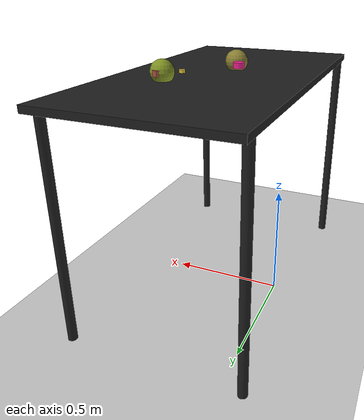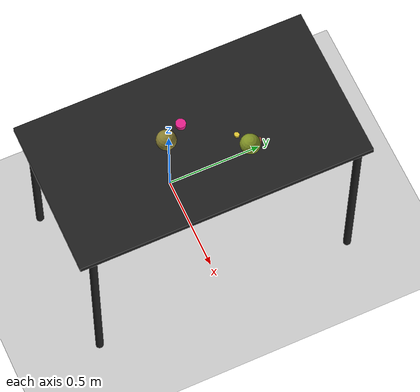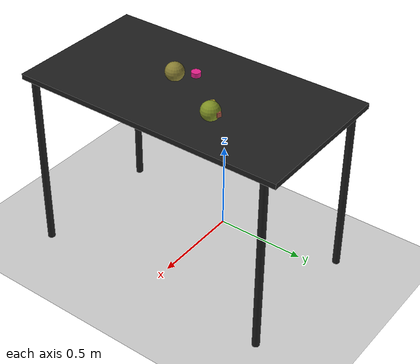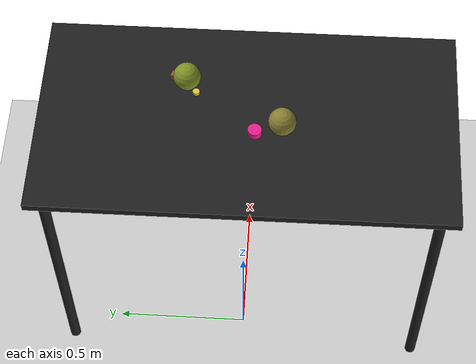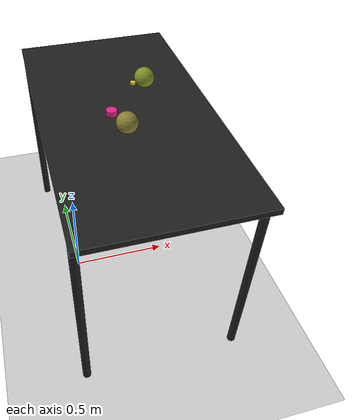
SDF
<?xml version="1.0" ?>
<sdf version="1.6">
  <world name="arm_world">
    <plugin filename="gz-sim-physics-system" name="gz::sim::systems::Physics">
      <engine>
        <filename>libgz-physics-bullet-featherstone-plugin.so</filename>
      </engine>
    </plugin>
    <plugin filename="gz-sim-user-commands-system" name="gz::sim::systems::UserCommands"/>
    <plugin filename="gz-sim-scene-broadcaster-system" name="gz::sim::systems::SceneBroadcaster"/>
    <plugin filename="gz-sim-sensors-system" name="gz::sim::systems::Sensors">
      <render_engine>ogre2</render_engine>
    </plugin>
    <gravity>0.0 0.0 -9.8</gravity>
    <scene>
      <shadows>false</shadows>
    </scene>
    <gui>
      <camera name="user_camera">
        <pose>0.75 -0.75 1.4 0 0.29 2.21</pose>
      </camera>
    </gui>
    <include>
      <uri>https://fuel.gazebosim.org/1.0/OpenRobotics/models/Sun</uri>
    </include>
    <model name="table">
      <static>true</static>
      <include>
        <uri>model://table</uri>
      </include>
      <pose>0.29 0 0 0 0 1.5708</pose>
    </model>
    <model name="ground_plane">
      <static>true</static>
      <link name="link">
        <collision name="collision">
          <geometry>
            <plane>
              <normal>0 0 1</normal>
            </plane>
          </geometry>
          <surface>
            <friction>
              <ode>
                <mu>1.0</mu>
                <mu2>1.0</mu2>
              </ode>
            </friction>
          </surface>
        </collision>
        <visual name="visual">
          <geometry>
            <plane>
              <normal>0 0 1</normal>
              <size>100 100</size>
            </plane>
          </geometry>
          <material>
            <ambient>0.8 0.8 0.8 1</ambient>
            <diffuse>0.8 0.8 0.8 1</diffuse>
            <specular>0.8 0.8 0.8 1</specular>
          </material>
        </visual>
      </link>
    </model>
    <model name="cube_s_0">
      <pose>0.442 0.268 1.05 0 0 5.89</pose>
      <link name="cube_s_0_link">
        <collision name="cube_s_0_collision">
          <geometry>
            <box>
              <size>0.025 0.025 0.025</size>
            </box>
          </geometry>
        </collision>
        <visual name="cube_s_0_visual">
          <geometry>
            <box>
              <size>0.025 0.025 0.025</size>
            </box>
          </geometry>
          <material>
            <ambient>0.64 0.32 0.24 1</ambient>
            <diffuse>0.64 0.32 0.24 1</diffuse>
          </material>
        </visual>
        <velocity_decay>
          <linear>1</linear>
          <angular>1</angular>
        </velocity_decay>
      </link>
    </model>
    <model name="sphere_l_1">
      <pose>0.442 0.225 1.05 0 0 3.48</pose>
      <link name="sphere_l_1_link">
        <collision name="sphere_l_1_collision">
          <geometry>
            <sphere>
              <radius>0.05</radius>
            </sphere>
          </geometry>
        </collision>
        <visual name="sphere_l_1_visual">
          <geometry>
            <sphere>
              <radius>0.05</radius>
            </sphere>
          </geometry>
          <material>
            <ambient>0.5 0.57 0.14 1</ambient>
            <diffuse>0.5 0.57 0.14 1</diffuse>
          </material>
        </visual>
        <velocity_decay>
          <linear>1</linear>
          <angular>1</angular>
        </velocity_decay>
      </link>
    </model>
    <model name="cylinder_s_2">
      <pose>0.373 0.187 1.05 0 0 5.41</pose>
      <link name="cylinder_s_2_link">
        <collision name="cylinder_s_2_collision">
          <geometry>
            <cylinder>
              <radius>0.0125</radius>
              <length>0.0125</length>
            </cylinder>
          </geometry>
        </collision>
        <visual name="cylinder_s_2_visual">
          <geometry>
            <cylinder>
              <radius>0.0125</radius>
              <length>0.0125</length>
            </cylinder>
          </geometry>
          <material>
            <ambient>0.88 0.78 0.2 1</ambient>
            <diffuse>0.88 0.78 0.2 1</diffuse>
          </material>
        </visual>
        <velocity_decay>
          <linear>1</linear>
          <angular>1</angular>
        </velocity_decay>
      </link>
    </model>
    <model name="sphere_l_3">
      <pose>0.261 -0.125 1.05 0 0 1.51</pose>
      <link name="sphere_l_3_link">
        <collision name="sphere_l_3_collision">
          <geometry>
            <sphere>
              <radius>0.05</radius>
            </sphere>
          </geometry>
        </collision>
        <visual name="sphere_l_3_visual">
          <geometry>
            <sphere>
              <radius>0.05</radius>
            </sphere>
          </geometry>
          <material>
            <ambient>0.54 0.5 0.2 1</ambient>
            <diffuse>0.54 0.5 0.2 1</diffuse>
          </material>
        </visual>
        <velocity_decay>
          <linear>1</linear>
          <angular>1</angular>
        </velocity_decay>
      </link>
    </model>
    <model name="cylinder_m_4">
      <pose>0.214 -0.03 1.05 0 0 4.17</pose>
      <link name="cylinder_m_4_link">
        <collision name="cylinder_m_4_collision">
          <geometry>
            <cylinder>
              <radius>0.025</radius>
              <length>0.025</length>
            </cylinder>
          </geometry>
        </collision>
        <visual name="cylinder_m_4_visual">
          <geometry>
            <cylinder>
              <radius>0.025</radius>
              <length>0.025</length>
            </cylinder>
          </geometry>
          <material>
            <ambient>0.91 0.12 0.55 1</ambient>
            <diffuse>0.91 0.12 0.55 1</diffuse>
          </material>
        </visual>
        <velocity_decay>
          <linear>1</linear>
          <angular>1</angular>
        </velocity_decay>
      </link>
    </model>
  </world>
</sdf>

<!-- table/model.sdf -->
<sdf version="1.5">
  <model name="table">
    <static>true</static>
    <link name="link">
      <collision name="surface">
        <pose>0 0 1.0 0 0 0</pose>
        <geometry>
          <box>
            <size>1.5 0.8 0.03</size>
          </box>
        </geometry>
        <surface>
          <friction>
            <ode>
              <mu>0.6</mu>
              <mu2>0.6</mu2>
            </ode>
          </friction>
        </surface>
      </collision>
      <visual name="surface">
        <pose>0 0 1.0 0 0 0</pose>
        <geometry>
          <box>
            <size>1.5 0.8 0.03</size>
          </box>
        </geometry>
        <material>
          <script>
            <uri>file://media/materials/scripts/gazebo.material</uri>
            <name>Gazebo/Black</name>
          </script>
        </material>
      </visual>
      <collision name="front_left_leg">
        <pose>0.68 0.38 0.5 0 0 0</pose>
        <geometry>
          <cylinder>
            <radius>0.02</radius>
            <length>1.0</length>
          </cylinder>
        </geometry>
      </collision>
      <visual name="front_left_leg">
        <pose>0.68 0.38 0.5 0 0 0</pose>
        <geometry>
          <cylinder>
            <radius>0.02</radius>
            <length>1.0</length>
          </cylinder>
        </geometry>
        <material>
          <script>
            <uri>file://media/materials/scripts/gazebo.material</uri>
            <name>Gazebo/Black</name>
          </script>
        </material>
      </visual>
      <collision name="front_right_leg">
        <pose>0.68 -0.38 0.5 0 0 0</pose>
        <geometry>
          <cylinder>
            <radius>0.02</radius>
            <length>1.0</length>
          </cylinder>
        </geometry>
      </collision>
      <visual name="front_right_leg">
        <pose>0.68 -0.38 0.5 0 0 0</pose>
        <geometry>
          <cylinder>
            <radius>0.02</radius>
            <length>1.0</length>
          </cylinder>
        </geometry>
        <material>
          <script>
            <uri>file://media/materials/scripts/gazebo.material</uri>
            <name>Gazebo/Black</name>
          </script>
        </material>
      </visual>
      <collision name="back_right_leg">
        <pose>-0.68 -0.38 0.5 0 0 0</pose>
        <geometry>
          <cylinder>
            <radius>0.02</radius>
            <length>1.0</length>
          </cylinder>
        </geometry>
      </collision>
      <visual name="back_right_leg">
        <pose>-0.68 -0.38 0.5 0 0 0</pose>
        <geometry>
          <cylinder>
            <radius>0.02</radius>
            <length>1.0</length>
          </cylinder>
        </geometry>
        <material>
          <script>
            <uri>file://media/materials/scripts/gazebo.material</uri>
            <name>Gazebo/Black</name>
          </script>
        </material>
      </visual>
      <collision name="back_left_leg">
        <pose>-0.68 0.38 0.5 0 0 0</pose>
        <geometry>
          <cylinder>
            <radius>0.02</radius>
            <length>1.0</length>
          </cylinder>
        </geometry>
      </collision>
      <visual name="back_left_leg">
        <pose>-0.68 0.38 0.5 0 0 0</pose>
        <geometry>
          <cylinder>
            <radius>0.02</radius>
            <length>1.0</length>
          </cylinder>
        </geometry>
        <material>
          <script>
            <uri>file://media/materials/scripts/gazebo.material</uri>
            <name>Gazebo/Black</name>
          </script>
        </material>
      </visual>
    </link>
  </model>
</sdf>
